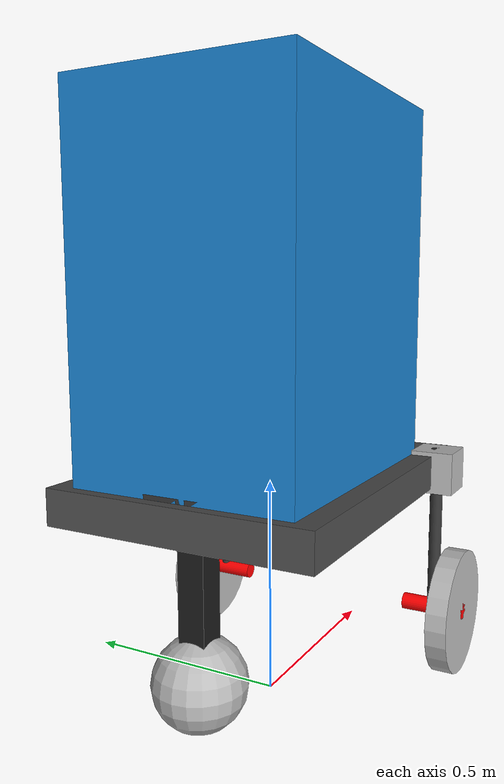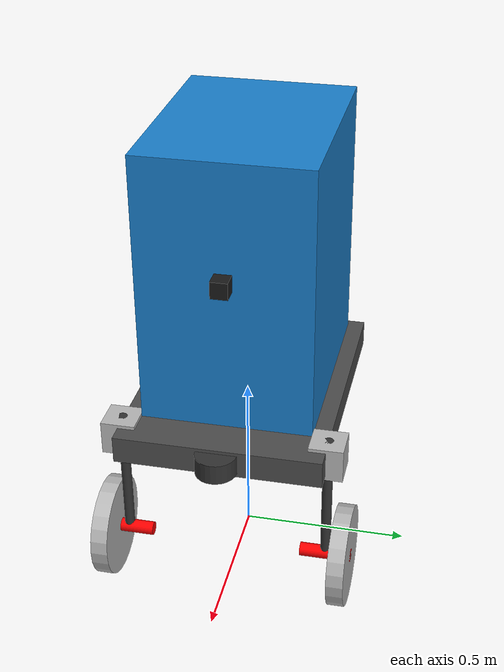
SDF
<sdf version="1.8">
  <model name="grey_robot">
    <self_collide>false</self_collide>

    <frame name="lidar_frame" attached_to='chassis'>
        <pose> 0.4 0 0 0 0 0</pose>
	  </frame>

    <link name="chassis">
      <pose>0 0 0.5 0 0 0</pose>

      <inertial>
        <pose>-0.2 0 -0.2 0 0 0</pose>
        <mass>15.0</mass>
        <inertia>
          <ixx>0.8</ixx>
          <iyy>0.8</iyy>
          <izz>0.8</izz>
        </inertia>
      </inertial>

      <visual name="base_platform_visual">
        <geometry>
          <box>
            <size>0.8 0.6 0.08</size>
          </box>
        </geometry>
        <material>
          <ambient>0.3 0.3 0.3 1</ambient>
          <diffuse>0.3 0.3 0.3 1</diffuse>
        </material>
      </visual>

      <visual name="cabin_visual">
        <pose>-0.05 0 0.44 0 0 0</pose>
        <geometry>
          <box>
            <size>0.65 0.5 0.8</size> </box>
        </geometry>
        <material>
          <ambient>0.1 0.5 0.8 1</ambient> <diffuse>0.1 0.5 0.8 1</diffuse>
        </material>
      </visual>

      <collision name="chassis_collision">
        <pose>0 0 0.15 0 0 0</pose>
        <geometry>
          <box>
            <size>0.8 0.6 0.48</size>
          </box>
        </geometry>
      </collision>

      <visual name="camera_visual">
        <pose>0.3 0 0.5 0 0 0</pose>
        <geometry>
          <box>
            <size>0.05 0.05 0.05</size> </box>
        </geometry>
        <material>
          <ambient>0.1 0.1 0.1 1</ambient> <diffuse>0.1 0.1 0.1 1</diffuse>
          <specular>1 1 1 1</specular>    </material>
      </visual>

      <sensor name="camera" type="camera">
        <pose>0.3 0 0.5 0 0 0</pose> <always_on>1</always_on>
        <update_rate>30</update_rate>
        <visualize>true</visualize>
        <topic>camera/image_raw</topic>
        <camera name="intel_realsense">
          <horizontal_fov>1.3962634</horizontal_fov> <image>
            <width>640</width>
            <height>480</height>
            <format>R8G8B8</format>
          </image>
          <clip>
            <near>0.1</near>
            <far>100</far>
          </clip>
        </camera>
      </sensor>

      <sensor name='gpu_lidar' type='gpu_lidar'>"
          <pose relative_to='lidar_frame'>0 0 0 0 0 0</pose>
          <topic>lidar</topic>
          <update_rate>10</update_rate>
          <ray>
              <scan>
                  <horizontal>
                      <samples>640</samples>
                      <resolution>1</resolution>
                      <min_angle>-1.396263</min_angle>
                      <max_angle>1.396263</max_angle>
                  </horizontal>
                  <vertical>
                      <samples>1</samples>
                      <resolution>0.01</resolution>
                      <min_angle>0</min_angle>
                      <max_angle>0</max_angle>
                  </vertical>
              </scan>
              <range>
                  <min>0.08</min>
                  <max>10.0</max>
                  <resolution>0.01</resolution>
              </range>
          </ray>
          <always_on>1</always_on>
          <visualize>true</visualize>
      </sensor>

    </link>

    <link name="body_L">
      <pose>0.3 0.3 0.5 0 0 0</pose>
      <visual name="visual">
        <geometry><box><size>0.1 0.1 0.1</size></box></geometry>
      </visual>
    </link>

    <link name="axle_L">
      <pose>0.3 0.3 0.15 1.5708 0 0</pose> <visual name="visual">
        <geometry><cylinder><radius>0.02</radius><length>0.15</length></cylinder></geometry>
        <material><ambient>1 0 0 1</ambient></material>
      </visual>
      <visual name="vertical_shock">
        <pose>0 0.2 0 1.5708 0 0</pose>
        <geometry>
          <cylinder>
            <radius>0.015</radius>
            <length>0.4</length>
          </cylinder>
        </geometry>
        <material>
          <ambient>0.1 0.1 0.1 1</ambient>
          <diffuse>0.2 0.2 0.2 1</diffuse>
        </material>
      </visual>
    </link>

    <link name="tire_L">
      <pose>0.3 0.35 0.15 1.5708 0 0</pose>
      <collision name="collision"><geometry><cylinder><radius>0.15</radius><length>0.05</length></cylinder></geometry></collision>
      <visual name="visual"><geometry><cylinder><radius>0.15</radius><length>0.05</length></cylinder></geometry></visual>
    </link>

    <link name="body_R"><pose>0.3 -0.3 0.5 0 0 0</pose><visual name="visual"><geometry><box><size>0.1 0.1 0.1</size></box></geometry></visual></link>

    <link name="axle_R">
      <pose>0.3 -0.3 0.15 1.5708 0 0</pose>
      <visual name="visual">
        <geometry><cylinder><radius>0.02</radius><length>0.15</length></cylinder></geometry>
        <material><ambient>1 0 0 1</ambient></material>
      </visual>
      <visual name="vertical_shock">
        <pose>0 0.2 0 1.5708 0 0</pose>
        <geometry>
          <cylinder>
            <radius>0.015</radius>
            <length>0.4</length>
          </cylinder>
        </geometry>
        <material>
          <ambient>0.1 0.1 0.1 1</ambient>
          <diffuse>0.2 0.2 0.2 1</diffuse>
        </material>
      </visual>
    </link>

    <link name="tire_R">
      <pose>0.3 -0.35 0.15 1.5708 0 0</pose>
      <collision name="collision"><geometry><cylinder><radius>0.15</radius><length>0.05</length></cylinder></geometry></collision>
      <visual name="visual"><geometry><cylinder><radius>0.15</radius><length>0.05</length></cylinder></geometry></visual>
    </link>

    z<link name="caster_housing">
      <pose>-0.3 0 0.5 0 0 0</pose>

      <visual name="housing_visual">
        <geometry>
          <box><size>0.15 0.15 0.1</size></box>
        </geometry>
        <material><ambient>0.2 0.2 0.2 1</ambient></material>
      </visual>

      <visual name="strut_visual">
        <pose>0 0 -0.15 0 0 0</pose>
        <geometry>
          <box>
            <size>0.06 0.06 0.3</size> </box>
        </geometry>
        <material><ambient>0.1 0.1 0.1 1</ambient></material>
      </visual>

      <collision name="collision">
        <pose>0 0 -0.1 0 0 0</pose>
        <geometry>
          <box><size>0.15 0.15 0.4</size></box>
        </geometry>
      </collision>
    </link>

    <link name="caster_ball">
      <pose>-0.3 0 0.15 0 0 0</pose>
      <collision name="collision">
        <geometry><sphere><radius>0.1</radius></sphere></geometry>
        <surface>
          <friction><ode><mu>0.01</mu><mu2>0.01</mu2><slip1>1.0</slip1><slip2>1.0</slip2></ode></friction>
          <contact><ode><soft_cfm>0.01</soft_cfm><kp>1000000.0</kp><kd>1.0</kd></ode></contact>
        </surface>
      </collision>
      <visual name="visual"><geometry><sphere><radius>0.1</radius></sphere></geometry></visual>
    </link>

    <joint name="suspension_caster" type="prismatic">
      <parent>caster_housing</parent><child>caster_ball</child>
      <axis>
        <xyz expressed_in="__model__">0 0 1</xyz>
        ##<limit><lower>-0.02</lower><upper>0.02</upper></limit>
        <dynamics><spring_stiffness>3000.0</spring_stiffness><damping>100.0</damping></dynamics>
      </axis>
    </joint>

    <joint name="ch_to_C" type="fixed"><parent>chassis</parent><child>caster_housing</child></joint>

    <joint name="ch_to_L" type="fixed"><parent>chassis</parent><child>body_L</child></joint>
    <joint name="ch_to_R" type="fixed"><parent>chassis</parent><child>body_R</child></joint>

    <joint name="suspension_L" type="prismatic">
      <parent>body_L</parent><child>axle_L</child>
      <axis>
        <xyz expressed_in="__model__">0 0 1</xyz>
        <limit><lower>-0.15</lower><upper>0.15</upper></limit>
        <dynamics><spring_stiffness>2000.0</spring_stiffness><damping>200.0</damping></dynamics>
      </axis>
    </joint>

    <joint name="suspension_R" type="prismatic">
      <parent>body_R</parent><child>axle_R</child>
      <axis>
        <xyz expressed_in="__model__">0 0 1</xyz>
        <limit><lower>-0.15</lower><upper>0.15</upper></limit>
        <dynamics><spring_stiffness>2000.0</spring_stiffness><damping>200.0</damping></dynamics>
      </axis>
    </joint>

    <joint name="drive_L" type="revolute"><parent>axle_L</parent><child>tire_L</child><axis><xyz expressed_in="__model__">0 1 0</xyz></axis></joint>
    <joint name="drive_R" type="revolute"><parent>axle_R</parent><child>tire_R</child><axis><xyz expressed_in="__model__">0 1 0</xyz></axis></joint>

    <link name='lidar_disk'>
      <pose relative_to='lidar_frame'>0 0 0 0 0 0</pose>
        <visual name='lidar_disk_visual'>
            <geometry>
                <cylinder>
                    <radius>0.06</radius>
                    <length>0.06</length>
                </cylinder>
            </geometry>
            <material>
              <ambient>0.1 0.1 0.1 1</ambient>
              <diffuse>0.2 0.2 0.2 1</diffuse>
            </material>
        </visual>
        <collision name='collision'>
            <geometry>
                <cylinder>
                    <radius>0.06</radius>
                    <length>0.06</length>
                </cylinder>
            </geometry>
        </collision>
    </link>

    <joint name='lidar_disk_joint' type='fixed'>
        <parent>chassis</parent>
        <child>lidar_disk</child>
    </joint>

    <plugin filename="gz-sim-joint-state-publisher-system" name="gz::sim::systems::JointStatePublisher"/>
    <plugin filename="gz-sim-apply-joint-force-system" name="gz::sim::systems::ApplyJointForce"><joint_name>suspension_L</joint_name></plugin>
    <plugin filename="gz-sim-apply-joint-force-system" name="gz::sim::systems::ApplyJointForce"><joint_name>suspension_R</joint_name></plugin>

    <plugin filename="gz-sim-diff-drive-system" name="gz::sim::systems::DiffDrive">
      <left_joint>drive_L</left_joint>
      <right_joint>drive_R</right_joint>
      <wheel_separation>0.7</wheel_separation>
      <wheel_radius>0.15</wheel_radius>
      <topic>cmd_vel</topic>
      <max_linear_acceleration>0.4</max_linear_acceleration>
      <max_wheel_torque>35.0</max_wheel_torque>
    </plugin>

    <plugin
      filename="gz-sim-odometry-publisher-system"
      name="gz::sim::systems::OdometryPublisher">
      <odom_frame>odom</odom_frame>
      <robot_base_frame>chassis</robot_base_frame>
      <publish_odom_tf>true</publish_odom_tf>
    </plugin>

  </model>
</sdf>
